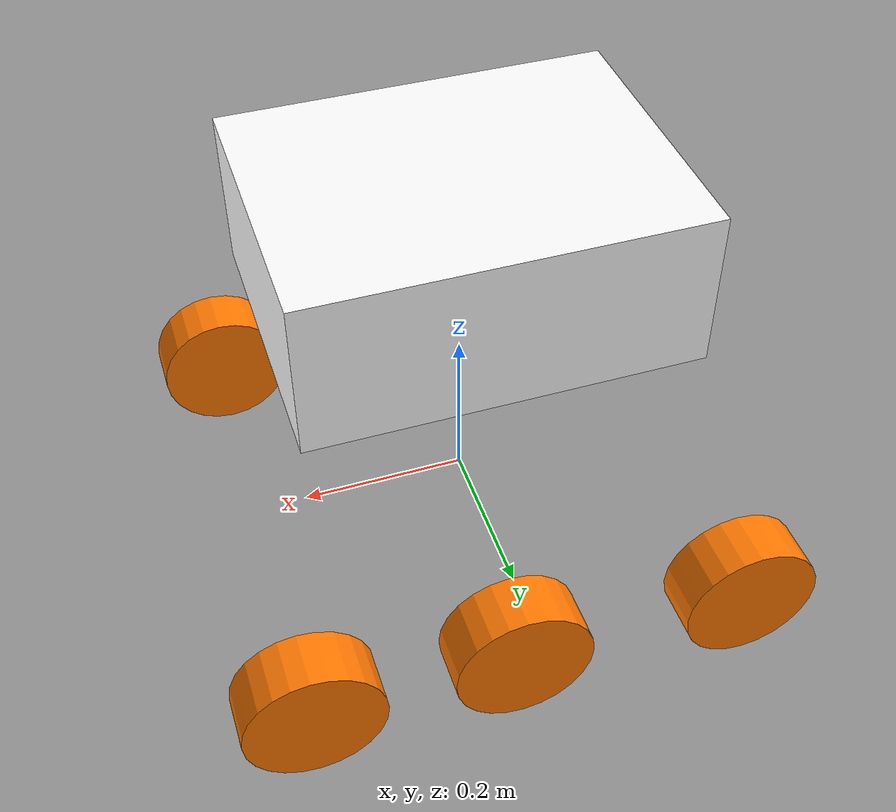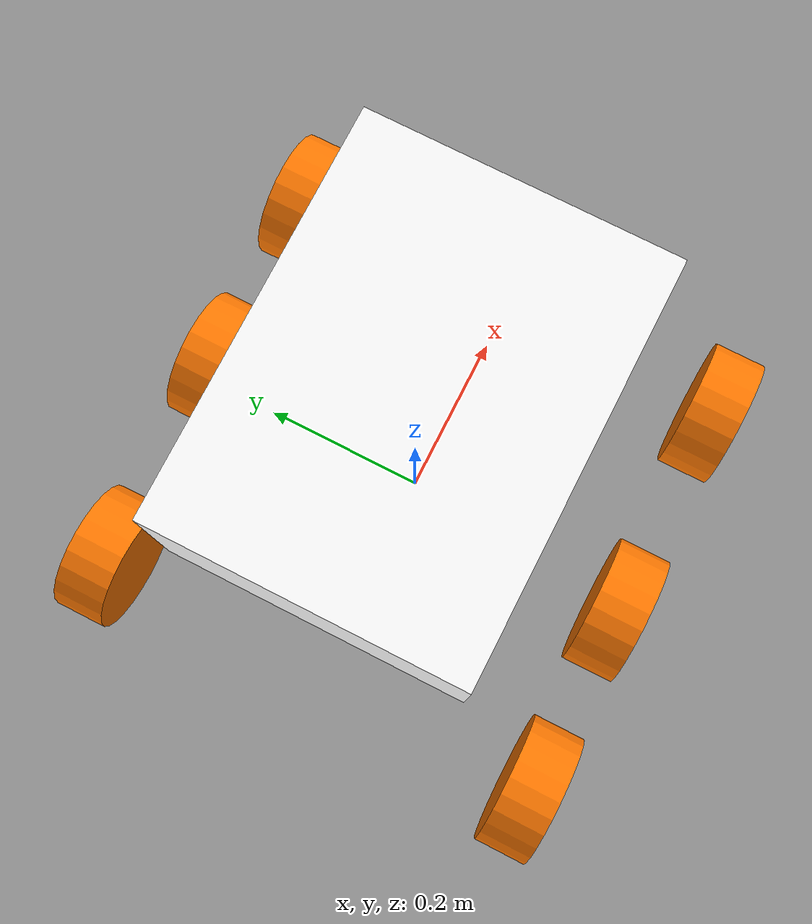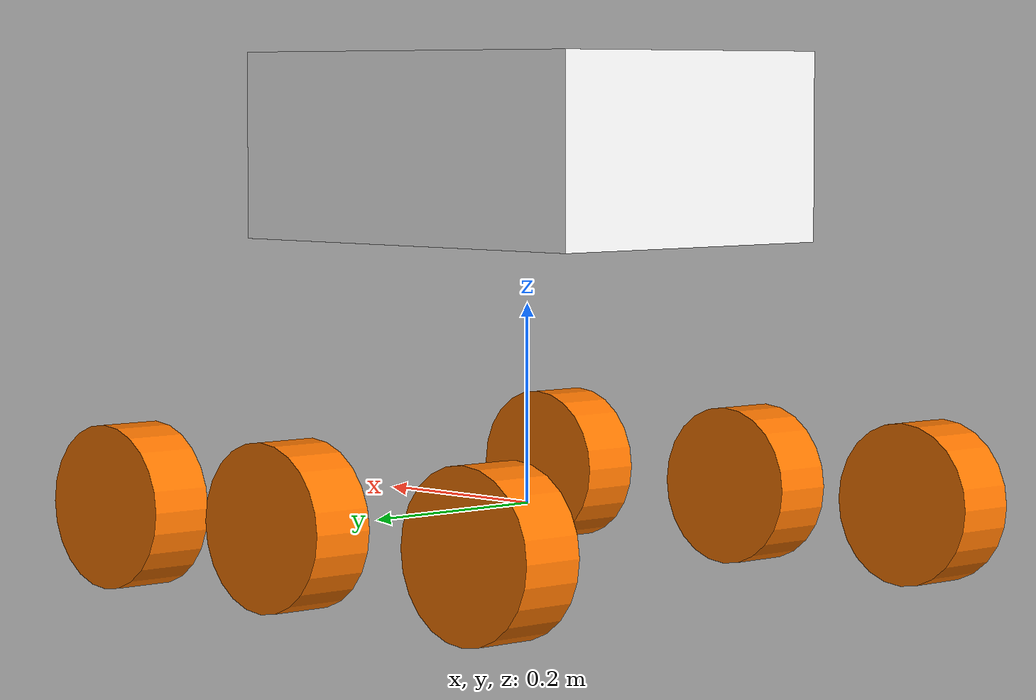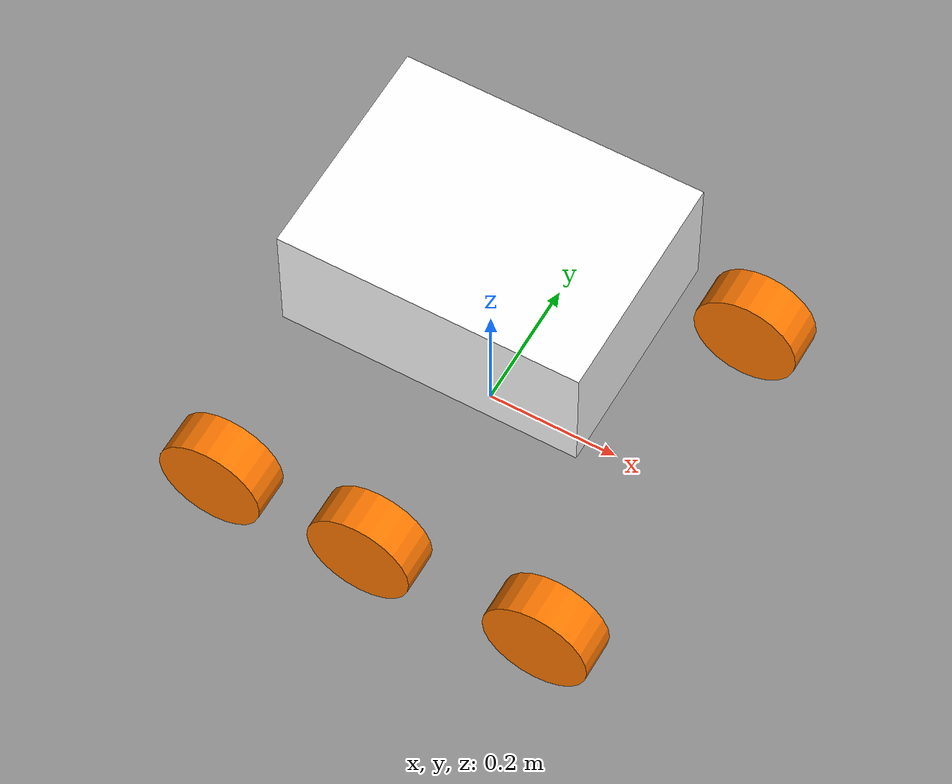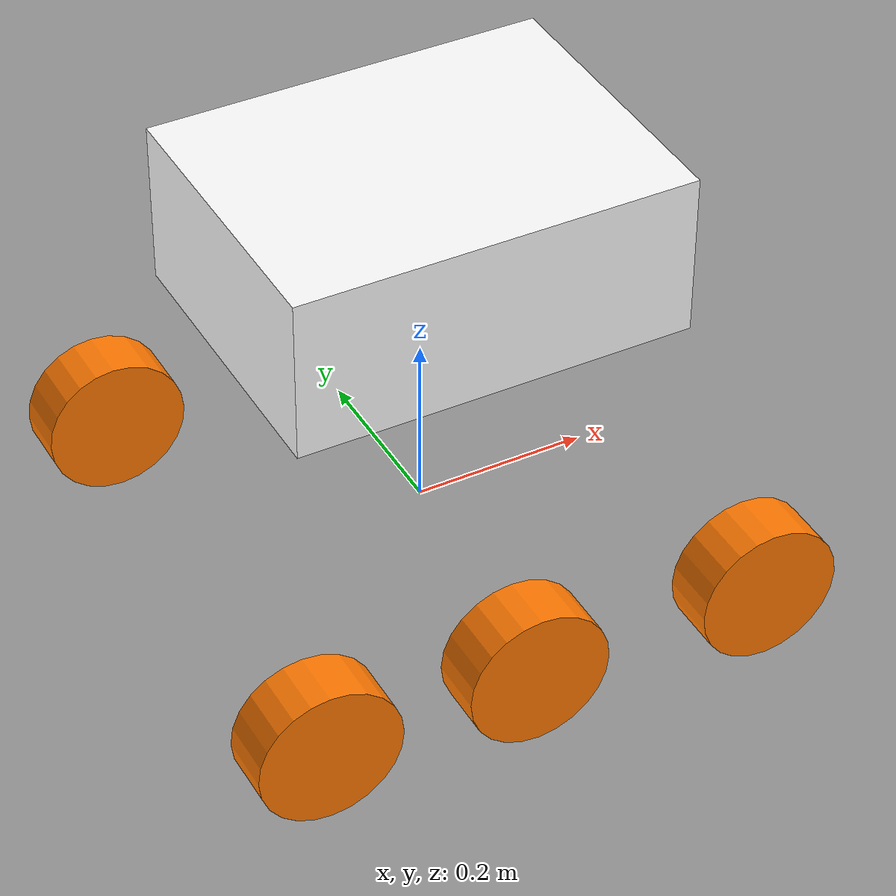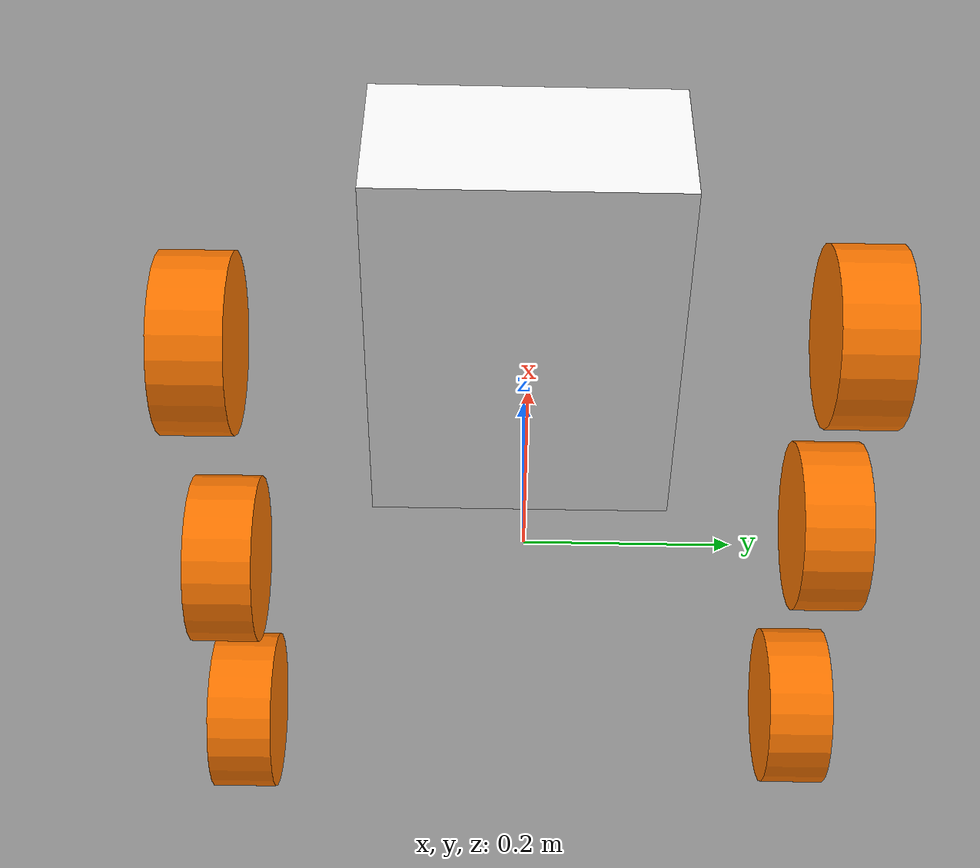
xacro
<?xml version="1.0"?>
<robot xmlns:xacro="http://www.ros.org/wiki/xacro"  >

    <xacro:include filename="inertia_macros.xacro" />

    <material name="white">
        <color rgba="1 1 1 1"/>
    </material>

    <material name="orange">
        <color rgba="${255/255} ${120/255} 0 1"/>
    </material>

    <material name="black">
        <color rgba="0 0 0 1"/>
    </material>

    <!-- BASE LINK -->

    <link name="base_link">

    </link>

    <!-- BASE FOOTPRINT LINK-->

    <joint name="base_footprint_joint" type="fixed">
        <parent link="base_link"/>
        <child link="base_footprint"/>
        <origin xyz="0 0 0" rpy = "0 0 0"/>
    </joint>

    <link name="base_footprint">
    </link>

    <!-- CHASSIS LINK -->

    <joint name="chassis_joint" type="fixed">
        <parent link="base_link"/>
        <child link="chassis"/>
        <origin xyz="0 0 0.357"/>
    </joint>

    <link name="chassis">
        <visual>
            <origin xyz="0 0 0"/>
            <geometry>
                <box size="0.454025 0.3429 0.187"/>
            </geometry>
            <material name="white"/>
        </visual>
        <collision>
            <origin xyz="0 0 0"/>
            <geometry>
                <box size="0.454025 0.3429 0.187"/>
            </geometry>
        </collision>
        <xacro:inertial_box mass="29.9" x="0.454025" y="0.3429" z="0.187">
            <origin xyz="0 0 0" rpy="0 0 0"/>
        </xacro:inertial_box>
    </link>

    <gazebo reference="chassis">
        <material>Gazebo/White</material>
    </gazebo>

    <!-- LEFT FRONT WHEEL LINK -->

    <joint name="left_front_wheel_joint" type="continuous">
        <parent link="base_link"/>
        <child link="left_front_wheel"/>
        <origin xyz="0.269 0.29 0" rpy="-${pi/2} 0 0"/>
        <axis xyz="0 0 1"/>
    </joint>

    <link name="left_front_wheel">
        <visual>
            <geometry>
                <cylinder radius="0.081674" length="0.065"/>
            </geometry>
            <material name="orange"/>
        </visual>
        <collision>
            <geometry>
                <sphere radius="0.081674"/>
            </geometry>
        </collision>
        <xacro:inertial_cylinder mass="0.4" length="0.065" radius="0.081674">
            <origin xyz="0 0 0" rpy="0 0 0"/>
        </xacro:inertial_cylinder>
    </link>

    <gazebo reference="left_front_wheel">
        <material>Gazebo/Orange</material>
    </gazebo>

    <!-- LEFT MID WHEEL LINK -->

    <joint name="left_mid_wheel_joint" type="continuous">
        <parent link="base_link"/>
        <child link="left_mid_wheel"/>
        <origin xyz="0.029 0.29 0" rpy="-${pi/2} 0 0"/>
        <axis xyz="0 0 1"/>
    </joint>

    <link name="left_mid_wheel">
        <visual>
            <geometry>
                <cylinder radius="0.081674" length="0.065"/>
            </geometry>
            <material name="orange"/>
        </visual>
        <collision>
            <geometry>
                <sphere radius="0.081674"/>
            </geometry>
        </collision>
        <xacro:inertial_cylinder mass="0.4" length="0.065" radius="0.081674">
            <origin xyz="0 0 0" rpy="0 0 0"/>
        </xacro:inertial_cylinder>
    </link>

    <gazebo reference="left_mid_wheel">
        <material>Gazebo/Orange</material>
    </gazebo>

    <!-- LEFT REAR WHEEL -->

    <joint name="left_rear_wheel_joint" type="continuous">
        <parent link="base_link"/>
        <child link="left_rear_wheel"/>
        <origin xyz="-0.25 0.29 0" rpy="-${pi/2} 0 0"/>
        <axis xyz="0 0 1"/>
    </joint>

    <link name="left_rear_wheel">
        <visual>
            <geometry>
                <cylinder radius="0.081674" length="0.065"/>
            </geometry>
            <material name="orange"/>
        </visual>
        <collision>
            <geometry>
                <sphere radius="0.081674"/>
            </geometry>
        </collision>
        <xacro:inertial_cylinder mass="0.4" length="0.065" radius="0.081674">
            <origin xyz="0 0 0" rpy="0 0 0"/>
        </xacro:inertial_cylinder>
    </link>

    <gazebo reference="left_rear_wheel">
        <material>Gazebo/Orange</material>
    </gazebo>

    <!-- RIGHT FRONT WHEEL LINK -->

    <joint name="right_front_wheel_joint" type="continuous">
        <parent link="base_link"/>
        <child link="right_front_wheel"/>
        <origin xyz="0.25 -0.29 0" rpy="-${pi/2} 0 0"/>
        <axis xyz="0 0 1"/>
    </joint>

    <link name="right_front_wheel">
        <visual>
            <geometry>
                <cylinder radius="0.081674" length="0.065"/>
            </geometry>
            <material name="orange"/>
        </visual>
        <collision>
            <geometry>
                <sphere radius="0.081674"/>
            </geometry>
        </collision>
        <xacro:inertial_cylinder mass="0.4" length="0.065" radius="0.081674">
            <origin xyz="0 0 0" rpy="0 0 0"/>
        </xacro:inertial_cylinder>
    </link>

    <gazebo reference="right_front_wheel">
        <material>Gazebo/Orange</material>
    </gazebo>

    <!-- RIGHT MID WHEEL LINK -->

    <joint name="right_mid_wheel_joint" type="continuous">
        <parent link="base_link"/>
        <child link="right_mid_wheel"/>
        <origin xyz="-0.029 -0.29 0" rpy="-${pi/2} 0 0"/>
        <axis xyz="0 0 1"/>
    </joint>

    <link name="right_mid_wheel">
        <visual>
            <geometry>
                <cylinder radius="0.081674" length="0.065"/>
            </geometry>
            <material name="orange"/>
        </visual>
        <collision>
            <geometry>
                <sphere radius="0.081674"/>
            </geometry>
        </collision>
        <xacro:inertial_cylinder mass="0.4" length="0.065" radius="0.081674">
            <origin xyz="0 0 0" rpy="0 0 0"/>
        </xacro:inertial_cylinder>
    </link>

    <gazebo reference="right_mid_wheel">
        <material>Gazebo/Orange</material>
    </gazebo>

    <!-- RIGHT REAR WHEEL LINK -->

    <joint name="right_rear_wheel_joint" type="continuous">
        <parent link="base_link"/>
        <child link="right_rear_wheel"/>
        <origin xyz="-0.269 -0.29 0" rpy="-${pi/2} 0 0"/>
        <axis xyz="0 0 1"/>
    </joint>

    <link name="right_rear_wheel">
        <visual>
            <geometry>
                <cylinder radius="0.081674" length="0.065"/>
            </geometry>
            <material name="orange"/>
        </visual>
        <collision>
            <geometry>
                <sphere radius="0.081674"/>
            </geometry>
        </collision>
        <xacro:inertial_cylinder mass="0.4" length="0.065" radius="0.081674">
            <origin xyz="0 0 0" rpy="0 0 0"/>
        </xacro:inertial_cylinder>
    </link>

    <gazebo reference="right_rear_wheel">
        <material>Gazebo/Orange</material>
    </gazebo>

</robot>
